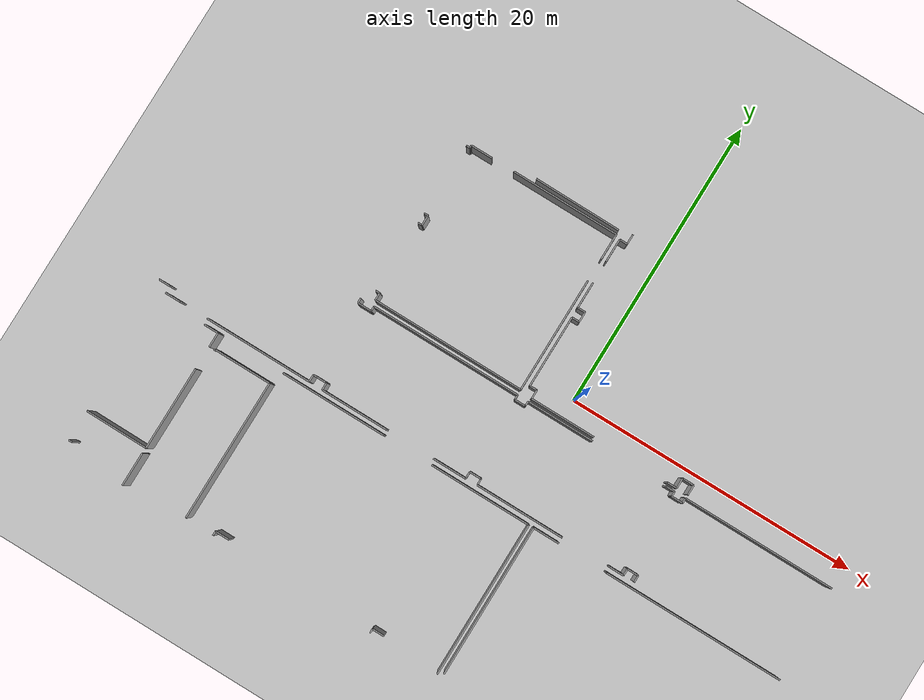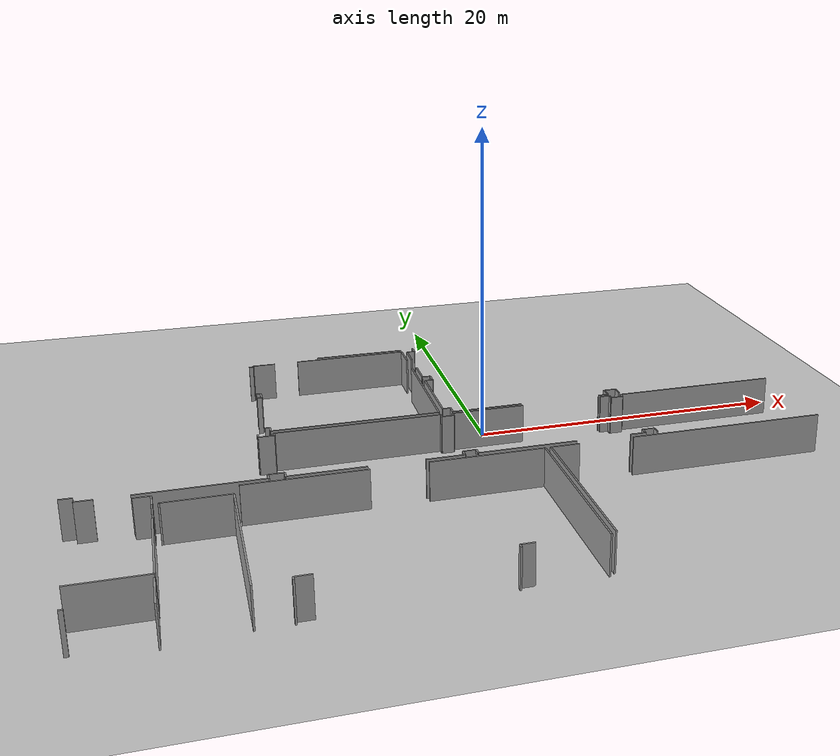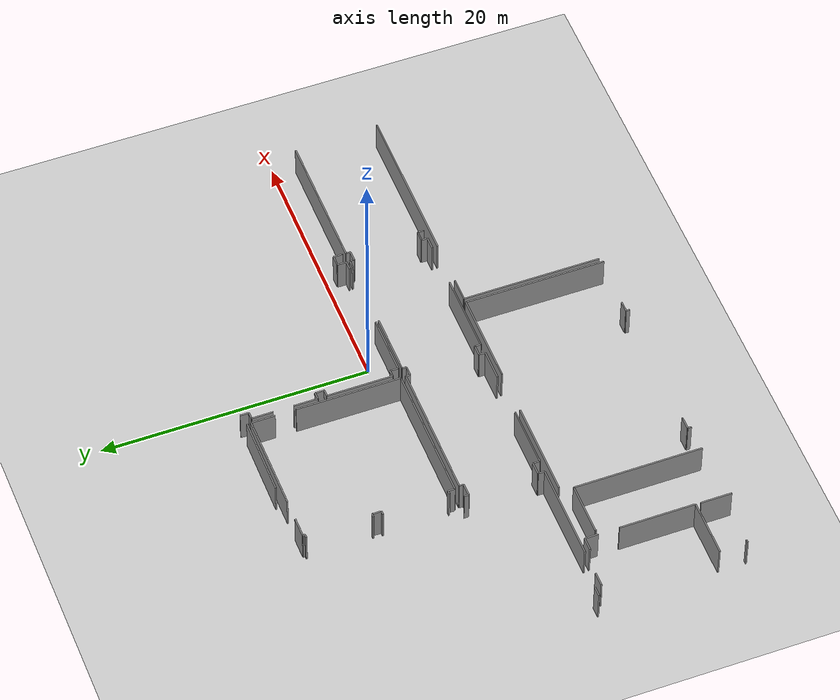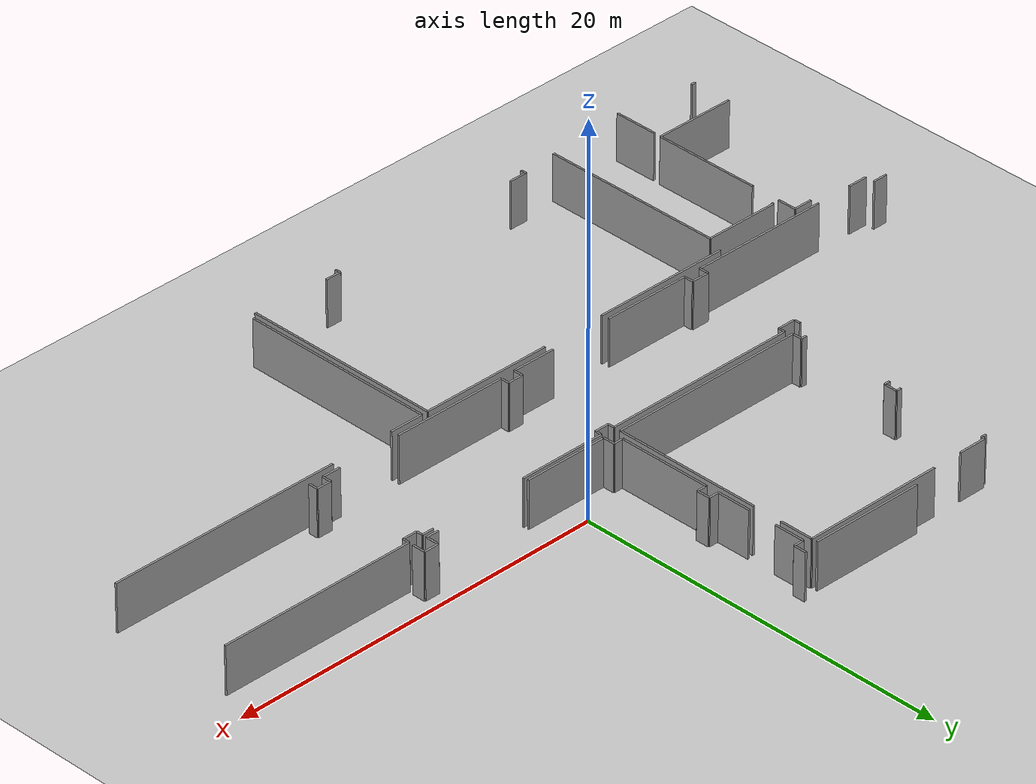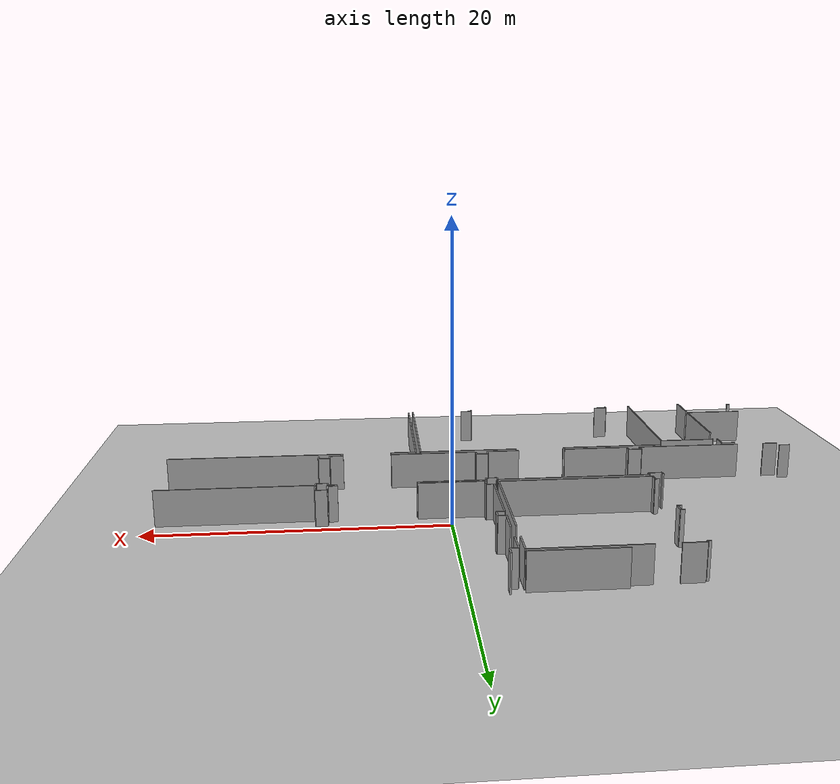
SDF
<sdf version="1.6">
 <world name="default">
  <model name="ground_plane">
   <static>1</static>
   <link name="link">
    <collision name="collision">
     <geometry><plane><normal>0 0 1</normal><size>100 100</size></plane></geometry>
     <surface><friction><ode><mu>100</mu><mu2>50</mu2></ode></friction></surface>
    </collision>
    <visual name="visual">
     <cast_shadows>0</cast_shadows>
     <geometry><plane><normal>0 0 1</normal><size>100 100</size></plane></geometry>
     <material>
      <script><uri>file://media/materials/scripts/gazebo.material</uri><name>Gazebo/Grey</name></script>
     </material>
    </visual>
   </link>
  </model>
  <model name="50015847">
   <static>1</static>
   <link name="Wall_324">
    <collision name="Wall_324_Collision">
     <geometry><box><size>4.93593328927 0.1 2.5</size></box></geometry>
     <pose>2.46796664463 0 1.25 0 0 0</pose>
    </collision>
    <visual name="Wall_324_Visual">
     <pose>2.46796664463 0 1.25 0 0 0</pose>
     <geometry><box><size>4.93593328927 0.1 2.5</size></box></geometry>
     <material>
      <script><uri>file://media/materials/scripts/gazebo.material</uri><name>Gazebo/Grey</name></script>
      <ambient>1 1 1 1</ambient>
     </material>
    </visual>
    <pose>129.529668989 -44.7022931815 0 0 0 1.57079632679</pose>
   </link>
   <link name="Wall_325">
    <collision name="Wall_325_Collision">
     <geometry><box><size>0.518889510347 0.1 2.5</size></box></geometry>
     <pose>0.259444755174 0 1.25 0 0 0</pose>
    </collision>
    <visual name="Wall_325_Visual">
     <pose>0.259444755174 0 1.25 0 0 0</pose>
     <geometry><box><size>0.518889510347 0.1 2.5</size></box></geometry>
     <material>
      <script><uri>file://media/materials/scripts/gazebo.material</uri><name>Gazebo/Grey</name></script>
      <ambient>1 1 1 1</ambient>
     </material>
    </visual>
    <pose>129.529668989 -39.7663598922 0 0 0 0.0</pose>
   </link>
   <link name="Wall_326">
    <collision name="Wall_326_Collision">
     <geometry><box><size>0.692530635074 0.1 2.5</size></box></geometry>
     <pose>0.346265317537 0 1.25 0 0 0</pose>
    </collision>
    <visual name="Wall_326_Visual">
     <pose>0.346265317537 0 1.25 0 0 0</pose>
     <geometry><box><size>0.692530635074 0.1 2.5</size></box></geometry>
     <material>
      <script><uri>file://media/materials/scripts/gazebo.material</uri><name>Gazebo/Grey</name></script>
      <ambient>1 1 1 1</ambient>
     </material>
    </visual>
    <pose>130.048558499 -39.7663598922 0 0 0 1.57079632679</pose>
   </link>
   <link name="Wall_327">
    <collision name="Wall_327_Collision">
     <geometry><box><size>0.535414653989 0.1 2.5</size></box></geometry>
     <pose>0.267707326994 0 1.25 0 0 0</pose>
    </collision>
    <visual name="Wall_327_Visual">
     <pose>0.267707326994 0 1.25 0 0 0</pose>
     <geometry><box><size>0.535414653989 0.1 2.5</size></box></geometry>
     <material>
      <script><uri>file://media/materials/scripts/gazebo.material</uri><name>Gazebo/Grey</name></script>
      <ambient>1 1 1 1</ambient>
     </material>
    </visual>
    <pose>130.048558499 -39.0738292571 0 0 0 3.14159265359</pose>
   </link>
   <link name="Wall_328">
    <collision name="Wall_328_Collision">
     <geometry><box><size>1.79590176438 0.1 2.5</size></box></geometry>
     <pose>0.897950882188 0 1.25 0 0 0</pose>
    </collision>
    <visual name="Wall_328_Visual">
     <pose>0.897950882188 0 1.25 0 0 0</pose>
     <geometry><box><size>1.79590176438 0.1 2.5</size></box></geometry>
     <material>
      <script><uri>file://media/materials/scripts/gazebo.material</uri><name>Gazebo/Grey</name></script>
      <ambient>1 1 1 1</ambient>
     </material>
    </visual>
    <pose>129.513143845 -39.0738292571 0 0 0 1.57079632679</pose>
   </link>
   <link name="Wall_329">
    <collision name="Wall_329_Collision">
     <geometry><box><size>1.60548126303 0.1 2.5</size></box></geometry>
     <pose>0.802740631515 0 1.25 0 0 0</pose>
    </collision>
    <visual name="Wall_329_Visual">
     <pose>0.802740631515 0 1.25 0 0 0</pose>
     <geometry><box><size>1.60548126303 0.1 2.5</size></box></geometry>
     <material>
      <script><uri>file://media/materials/scripts/gazebo.material</uri><name>Gazebo/Grey</name></script>
      <ambient>1 1 1 1</ambient>
     </material>
    </visual>
    <pose>129.513143845 -35.753800783 0 0 0 1.57079632679</pose>
   </link>
   <link name="Wall_330">
    <collision name="Wall_330_Collision">
     <geometry><box><size>0.535414653989 0.1 2.5</size></box></geometry>
     <pose>0.267707326994 0 1.25 0 0 0</pose>
    </collision>
    <visual name="Wall_330_Visual">
     <pose>0.267707326994 0 1.25 0 0 0</pose>
     <geometry><box><size>0.535414653989 0.1 2.5</size></box></geometry>
     <material>
      <script><uri>file://media/materials/scripts/gazebo.material</uri><name>Gazebo/Grey</name></script>
      <ambient>1 1 1 1</ambient>
     </material>
    </visual>
    <pose>129.513143845 -34.14831952 0 0 0 0.0</pose>
   </link>
   <link name="Wall_331">
    <collision name="Wall_331_Collision">
     <geometry><box><size>0.672191996746 0.1 2.5</size></box></geometry>
     <pose>0.336095998373 0 1.25 0 0 0</pose>
    </collision>
    <visual name="Wall_331_Visual">
     <pose>0.336095998373 0 1.25 0 0 0</pose>
     <geometry><box><size>0.672191996746 0.1 2.5</size></box></geometry>
     <material>
      <script><uri>file://media/materials/scripts/gazebo.material</uri><name>Gazebo/Grey</name></script>
      <ambient>1 1 1 1</ambient>
     </material>
    </visual>
    <pose>130.048558499 -34.14831952 0 0 0 1.57079632679</pose>
   </link>
   <link name="Wall_407">
    <collision name="Wall_407_Collision">
     <geometry><box><size>0.69659836274 0.1 2.5</size></box></geometry>
     <pose>0.34829918137 0 1.25 0 0 0</pose>
    </collision>
    <visual name="Wall_407_Visual">
     <pose>0.34829918137 0 1.25 0 0 0</pose>
     <geometry><box><size>0.69659836274 0.1 2.5</size></box></geometry>
     <material>
      <script><uri>file://media/materials/scripts/gazebo.material</uri><name>Gazebo/Grey</name></script>
      <ambient>1 1 1 1</ambient>
     </material>
    </visual>
    <pose>141.210911679 -45.3030457111 0 0 0 1.57079632679</pose>
   </link>
   <link name="Wall_408">
    <collision name="Wall_408_Collision">
     <geometry><box><size>0.788884934154 0.1 2.5</size></box></geometry>
     <pose>0.394442467077 0 1.25 0 0 0</pose>
    </collision>
    <visual name="Wall_408_Visual">
     <pose>0.394442467077 0 1.25 0 0 0</pose>
     <geometry><box><size>0.788884934154 0.1 2.5</size></box></geometry>
     <material>
      <script><uri>file://media/materials/scripts/gazebo.material</uri><name>Gazebo/Grey</name></script>
      <ambient>1 1 1 1</ambient>
     </material>
    </visual>
    <pose>141.210911679 -44.6064473484 0 0 0 3.14159265359</pose>
   </link>
   <link name="Wall_409">
    <collision name="Wall_409_Collision">
     <geometry><box><size>0.698632226572 0.1 2.5</size></box></geometry>
     <pose>0.349316113286 0 1.25 0 0 0</pose>
    </collision>
    <visual name="Wall_409_Visual">
     <pose>0.349316113286 0 1.25 0 0 0</pose>
     <geometry><box><size>0.698632226572 0.1 2.5</size></box></geometry>
     <material>
      <script><uri>file://media/materials/scripts/gazebo.material</uri><name>Gazebo/Grey</name></script>
      <ambient>1 1 1 1</ambient>
     </material>
    </visual>
    <pose>140.422026745 -44.6064473484 0 0 0 -1.57079632679</pose>
   </link>
   <link name="Wall_410">
    <collision name="Wall_410_Collision">
     <geometry><box><size>0.660497279707 0.1 2.5</size></box></geometry>
     <pose>0.330248639854 0 1.25 0 0 0</pose>
    </collision>
    <visual name="Wall_410_Visual">
     <pose>0.330248639854 0 1.25 0 0 0</pose>
     <geometry><box><size>0.660497279707 0.1 2.5</size></box></geometry>
     <material>
      <script><uri>file://media/materials/scripts/gazebo.material</uri><name>Gazebo/Grey</name></script>
      <ambient>1 1 1 1</ambient>
     </material>
    </visual>
    <pose>140.422026745 -45.3050795749 0 0 0 3.14159265359</pose>
   </link>
   <link name="Wall_411">
    <collision name="Wall_411_Collision">
     <geometry><box><size>4.47551736411 0.1 2.5</size></box></geometry>
     <pose>2.23775868206 0 1.25 0 0 0</pose>
    </collision>
    <visual name="Wall_411_Visual">
     <pose>2.23775868206 0 1.25 0 0 0</pose>
     <geometry><box><size>4.47551736411 0.1 2.5</size></box></geometry>
     <material>
      <script><uri>file://media/materials/scripts/gazebo.material</uri><name>Gazebo/Grey</name></script>
      <ambient>1 1 1 1</ambient>
     </material>
    </visual>
    <pose>134.516194641 -45.3050795749 0 0 0 3.14159265359</pose>
   </link>
   <link name="Wall_412">
    <collision name="Wall_412_Collision">
     <geometry><box><size>0.621091167946 0.1 2.5</size></box></geometry>
     <pose>0.310545583973 0 1.25 0 0 0</pose>
    </collision>
    <visual name="Wall_412_Visual">
     <pose>0.310545583973 0 1.25 0 0 0</pose>
     <geometry><box><size>0.621091167946 0.1 2.5</size></box></geometry>
     <material>
      <script><uri>file://media/materials/scripts/gazebo.material</uri><name>Gazebo/Grey</name></script>
      <ambient>1 1 1 1</ambient>
     </material>
    </visual>
    <pose>130.040677277 -45.3050795749 0 0 0 1.57079632679</pose>
   </link>
   <link name="Wall_413">
    <collision name="Wall_413_Collision">
     <geometry><box><size>0.511336029602 0.1 2.5</size></box></geometry>
     <pose>0.255668014801 0 1.25 0 0 0</pose>
    </collision>
    <visual name="Wall_413_Visual">
     <pose>0.255668014801 0 1.25 0 0 0</pose>
     <geometry><box><size>0.511336029602 0.1 2.5</size></box></geometry>
     <material>
      <script><uri>file://media/materials/scripts/gazebo.material</uri><name>Gazebo/Grey</name></script>
      <ambient>1 1 1 1</ambient>
     </material>
    </visual>
    <pose>130.040677277 -44.683988407 0 0 0 -3.10578706732</pose>
   </link>
   <link name="Wall_453">
    <collision name="Wall_453_Collision">
     <geometry><box><size>1.48929679158 0.1 2.5</size></box></geometry>
     <pose>0.74464839579 0 1.25 0 0 0</pose>
    </collision>
    <visual name="Wall_453_Visual">
     <pose>0.74464839579 0 1.25 0 0 0</pose>
     <geometry><box><size>1.48929679158 0.1 2.5</size></box></geometry>
     <material>
      <script><uri>file://media/materials/scripts/gazebo.material</uri><name>Gazebo/Grey</name></script>
      <ambient>1 1 1 1</ambient>
     </material>
    </visual>
    <pose>118.718157319 -33.9851019474 0 0 0 0.0</pose>
   </link>
   <link name="Wall_454">
    <collision name="Wall_454_Collision">
     <geometry><box><size>7.38801037271 0.1 2.5</size></box></geometry>
     <pose>3.69400518635 0 1.25 0 0 0</pose>
    </collision>
    <visual name="Wall_454_Visual">
     <pose>3.69400518635 0 1.25 0 0 0</pose>
     <geometry><box><size>7.38801037271 0.1 2.5</size></box></geometry>
     <material>
      <script><uri>file://media/materials/scripts/gazebo.material</uri><name>Gazebo/Grey</name></script>
      <ambient>1 1 1 1</ambient>
     </material>
    </visual>
    <pose>121.78700361 -33.9851019474 0 0 0 0.0</pose>
   </link>
   <link name="Wall_455">
    <collision name="Wall_455_Collision">
     <geometry><box><size>1.79081710479 0.1 2.5</size></box></geometry>
     <pose>0.895408552397 0 1.25 0 0 0</pose>
    </collision>
    <visual name="Wall_455_Visual">
     <pose>0.895408552397 0 1.25 0 0 0</pose>
     <geometry><box><size>1.79081710479 0.1 2.5</size></box></geometry>
     <material>
      <script><uri>file://media/materials/scripts/gazebo.material</uri><name>Gazebo/Grey</name></script>
      <ambient>1 1 1 1</ambient>
     </material>
    </visual>
    <pose>129.175013983 -33.9851019474 0 0 0 -1.57079632679</pose>
   </link>
   <link name="Wall_456">
    <collision name="Wall_456_Collision">
     <geometry><box><size>7.85681598617 0.1 2.5</size></box></geometry>
     <pose>3.92840799308 0 1.25 0 0 0</pose>
    </collision>
    <visual name="Wall_456_Visual">
     <pose>3.92840799308 0 1.25 0 0 0</pose>
     <geometry><box><size>7.85681598617 0.1 2.5</size></box></geometry>
     <material>
      <script><uri>file://media/materials/scripts/gazebo.material</uri><name>Gazebo/Grey</name></script>
      <ambient>1 1 1 1</ambient>
     </material>
    </visual>
    <pose>129.175013983 -37.3280113896 0 0 0 -1.57079632679</pose>
   </link>
   <link name="Wall_457">
    <collision name="Wall_457_Collision">
     <geometry><box><size>10.4443992475 0.1 2.5</size></box></geometry>
     <pose>5.22219962374 0 1.25 0 0 0</pose>
    </collision>
    <visual name="Wall_457_Visual">
     <pose>5.22219962374 0 1.25 0 0 0</pose>
     <geometry><box><size>10.4443992475 0.1 2.5</size></box></geometry>
     <material>
      <script><uri>file://media/materials/scripts/gazebo.material</uri><name>Gazebo/Grey</name></script>
      <ambient>1 1 1 1</ambient>
     </material>
    </visual>
    <pose>129.175013983 -45.1848273758 0 0 0 3.14159265359</pose>
   </link>
   <link name="Wall_458">
    <collision name="Wall_458_Collision">
     <geometry><box><size>0.507957492246 0.1 2.5</size></box></geometry>
     <pose>0.253978746123 0 1.25 0 0 0</pose>
    </collision>
    <visual name="Wall_458_Visual">
     <pose>0.253978746123 0 1.25 0 0 0</pose>
     <geometry><box><size>0.507957492246 0.1 2.5</size></box></geometry>
     <material>
      <script><uri>file://media/materials/scripts/gazebo.material</uri><name>Gazebo/Grey</name></script>
      <ambient>1 1 1 1</ambient>
     </material>
    </visual>
    <pose>118.730614735 -45.1848273758 0 0 0 1.57079632679</pose>
   </link>
   <link name="Wall_459">
    <collision name="Wall_459_Collision">
     <geometry><box><size>0.289062897239 0.1 2.5</size></box></geometry>
     <pose>0.14453144862 0 1.25 0 0 0</pose>
    </collision>
    <visual name="Wall_459_Visual">
     <pose>0.14453144862 0 1.25 0 0 0</pose>
     <geometry><box><size>0.289062897239 0.1 2.5</size></box></geometry>
     <material>
      <script><uri>file://media/materials/scripts/gazebo.material</uri><name>Gazebo/Grey</name></script>
      <ambient>1 1 1 1</ambient>
     </material>
    </visual>
    <pose>118.730614735 -44.6768698836 0 0 0 3.14159265359</pose>
   </link>
   <link name="Wall_460">
    <collision name="Wall_460_Collision">
     <geometry><box><size>0.295418721717 0.1 2.5</size></box></geometry>
     <pose>0.147709360858 0 1.25 0 0 0</pose>
    </collision>
    <visual name="Wall_460_Visual">
     <pose>0.147709360858 0 1.25 0 0 0</pose>
     <geometry><box><size>0.295418721717 0.1 2.5</size></box></geometry>
     <material>
      <script><uri>file://media/materials/scripts/gazebo.material</uri><name>Gazebo/Grey</name></script>
      <ambient>1 1 1 1</ambient>
     </material>
    </visual>
    <pose>118.441551838 -39.7666141252 0 0 0 0.0</pose>
   </link>
   <link name="Wall_461">
    <collision name="Wall_461_Collision">
     <geometry><box><size>0.697615294656 0.1 2.5</size></box></geometry>
     <pose>0.348807647328 0 1.25 0 0 0</pose>
    </collision>
    <visual name="Wall_461_Visual">
     <pose>0.348807647328 0 1.25 0 0 0</pose>
     <geometry><box><size>0.697615294656 0.1 2.5</size></box></geometry>
     <material>
      <script><uri>file://media/materials/scripts/gazebo.material</uri><name>Gazebo/Grey</name></script>
      <ambient>1 1 1 1</ambient>
     </material>
    </visual>
    <pose>118.73697056 -39.7666141252 0 0 0 1.57079632679</pose>
   </link>
   <link name="Wall_462">
    <collision name="Wall_462_Collision">
     <geometry><box><size>0.276605481263 0.1 2.5</size></box></geometry>
     <pose>0.138302740632 0 1.25 0 0 0</pose>
    </collision>
    <visual name="Wall_462_Visual">
     <pose>0.138302740632 0 1.25 0 0 0</pose>
     <geometry><box><size>0.276605481263 0.1 2.5</size></box></geometry>
     <material>
      <script><uri>file://media/materials/scripts/gazebo.material</uri><name>Gazebo/Grey</name></script>
      <ambient>1 1 1 1</ambient>
     </material>
    </visual>
    <pose>118.73697056 -39.0689988305 0 0 0 3.14159265359</pose>
   </link>
   <link name="Wall_463">
    <collision name="Wall_463_Collision">
     <geometry><box><size>0.263639599329 0.1 2.5</size></box></geometry>
     <pose>0.131819799664 0 1.25 0 0 0</pose>
    </collision>
    <visual name="Wall_463_Visual">
     <pose>0.131819799664 0 1.25 0 0 0</pose>
     <geometry><box><size>0.263639599329 0.1 2.5</size></box></geometry>
     <material>
      <script><uri>file://media/materials/scripts/gazebo.material</uri><name>Gazebo/Grey</name></script>
      <ambient>1 1 1 1</ambient>
     </material>
    </visual>
    <pose>118.460365079 -34.1556922764 0 0 0 0.0</pose>
   </link>
   <link name="Wall_464">
    <collision name="Wall_464_Collision">
     <geometry><box><size>0.170690515092 0.1 2.5</size></box></geometry>
     <pose>0.0853452575459 0 1.25 0 0 0</pose>
    </collision>
    <visual name="Wall_464_Visual">
     <pose>0.0853452575459 0 1.25 0 0 0</pose>
     <geometry><box><size>0.170690515092 0.1 2.5</size></box></geometry>
     <material>
      <script><uri>file://media/materials/scripts/gazebo.material</uri><name>Gazebo/Grey</name></script>
      <ambient>1 1 1 1</ambient>
     </material>
    </visual>
    <pose>118.724004678 -34.1556922764 0 0 0 1.60506011007</pose>
   </link>
   <link name="Wall_469">
    <collision name="Wall_469_Collision">
     <geometry><box><size>5.95661216864 0.1 2.5</size></box></geometry>
     <pose>2.97830608432 0 1.25 0 0 0</pose>
    </collision>
    <visual name="Wall_469_Visual">
     <pose>2.97830608432 0 1.25 0 0 0</pose>
     <geometry><box><size>5.95661216864 0.1 2.5</size></box></geometry>
     <material>
      <script><uri>file://media/materials/scripts/gazebo.material</uri><name>Gazebo/Grey</name></script>
      <ambient>1 1 1 1</ambient>
     </material>
    </visual>
    <pose>129.164081965 -33.6919713225 0 0 0 3.1336539412</pose>
   </link>
   <link name="Wall_1002">
    <collision name="Wall_1002_Collision">
     <geometry><box><size>10.3793156048 0.1 2.5</size></box></geometry>
     <pose>5.18965780241 0 1.25 0 0 0</pose>
    </collision>
    <visual name="Wall_1002_Visual">
     <pose>5.18965780241 0 1.25 0 0 0</pose>
     <geometry><box><size>10.3793156048 0.1 2.5</size></box></geometry>
     <material>
      <script><uri>file://media/materials/scripts/gazebo.material</uri><name>Gazebo/Grey</name></script>
      <ambient>1 1 1 1</ambient>
     </material>
    </visual>
    <pose>134.277469873 -62.311486246 0 0 0 1.57079632679</pose>
   </link>
   <link name="Wall_1003">
    <collision name="Wall_1003_Collision">
     <geometry><box><size>1.79666446331 0.1 2.5</size></box></geometry>
     <pose>0.898332231657 0 1.25 0 0 0</pose>
    </collision>
    <visual name="Wall_1003_Visual">
     <pose>0.898332231657 0 1.25 0 0 0</pose>
     <geometry><box><size>1.79666446331 0.1 2.5</size></box></geometry>
     <material>
      <script><uri>file://media/materials/scripts/gazebo.material</uri><name>Gazebo/Grey</name></script>
      <ambient>1 1 1 1</ambient>
     </material>
    </visual>
    <pose>134.277469873 -51.9321706412 0 0 0 0.0</pose>
   </link>
   <link name="Wall_1004">
    <collision name="Wall_1004_Collision">
     <geometry><box><size>12.3427569024 0.1 2.5</size></box></geometry>
     <pose>6.17137845121 0 1.25 0 0 0</pose>
    </collision>
    <visual name="Wall_1004_Visual">
     <pose>6.17137845121 0 1.25 0 0 0</pose>
     <geometry><box><size>12.3427569024 0.1 2.5</size></box></geometry>
     <material>
      <script><uri>file://media/materials/scripts/gazebo.material</uri><name>Gazebo/Grey</name></script>
      <ambient>1 1 1 1</ambient>
     </material>
    </visual>
    <pose>139.476788529 -51.9321706412 0 0 0 0.0</pose>
   </link>
   <link name="Wall_1013">
    <collision name="Wall_1013_Collision">
     <geometry><box><size>7.27080896934 0.1 2.5</size></box></geometry>
     <pose>3.63540448467 0 1.25 0 0 0</pose>
    </collision>
    <visual name="Wall_1013_Visual">
     <pose>3.63540448467 0 1.25 0 0 0</pose>
     <geometry><box><size>7.27080896934 0.1 2.5</size></box></geometry>
     <material>
      <script><uri>file://media/materials/scripts/gazebo.material</uri><name>Gazebo/Grey</name></script>
      <ambient>1 1 1 1</ambient>
     </material>
    </visual>
    <pose>116.273452992 -51.9413230284 0 0 0 0.0</pose>
   </link>
   <link name="Wall_1014">
    <collision name="Wall_1014_Collision">
     <geometry><box><size>6.97386484975 0.1 2.5</size></box></geometry>
     <pose>3.48693242487 0 1.25 0 0 0</pose>
    </collision>
    <visual name="Wall_1014_Visual">
     <pose>3.48693242487 0 1.25 0 0 0</pose>
     <geometry><box><size>6.97386484975 0.1 2.5</size></box></geometry>
     <material>
      <script><uri>file://media/materials/scripts/gazebo.material</uri><name>Gazebo/Grey</name></script>
      <ambient>1 1 1 1</ambient>
     </material>
    </visual>
    <pose>126.960644735 -51.9413230284 0 0 0 0.0</pose>
   </link>
   <link name="Wall_1015">
    <collision name="Wall_1015_Collision">
     <geometry><box><size>10.6045660243 0.1 2.5</size></box></geometry>
     <pose>5.30228301215 0 1.25 0 0 0</pose>
    </collision>
    <visual name="Wall_1015_Visual">
     <pose>5.30228301215 0 1.25 0 0 0</pose>
     <geometry><box><size>10.6045660243 0.1 2.5</size></box></geometry>
     <material>
      <script><uri>file://media/materials/scripts/gazebo.material</uri><name>Gazebo/Grey</name></script>
      <ambient>1 1 1 1</ambient>
     </material>
    </visual>
    <pose>133.934509585 -51.9413230284 0 0 0 -1.57079632679</pose>
   </link>
   <link name="Wall_1018">
    <collision name="Wall_1018_Collision">
     <geometry><box><size>0.831087608685 0.1 2.5</size></box></geometry>
     <pose>0.415543804342 0 1.25 0 0 0</pose>
    </collision>
    <visual name="Wall_1018_Visual">
     <pose>0.415543804342 0 1.25 0 0 0</pose>
     <geometry><box><size>0.831087608685 0.1 2.5</size></box></geometry>
     <material>
      <script><uri>file://media/materials/scripts/gazebo.material</uri><name>Gazebo/Grey</name></script>
      <ambient>1 1 1 1</ambient>
     </material>
    </visual>
    <pose>129.986779885 -62.2883510449 0 0 0 3.14159265359</pose>
   </link>
   <link name="Wall_1019">
    <collision name="Wall_1019_Collision">
     <geometry><box><size>0.274317384451 0.1 2.5</size></box></geometry>
     <pose>0.137158692226 0 1.25 0 0 0</pose>
    </collision>
    <visual name="Wall_1019_Visual">
     <pose>0.137158692226 0 1.25 0 0 0</pose>
     <geometry><box><size>0.274317384451 0.1 2.5</size></box></geometry>
     <material>
      <script><uri>file://media/materials/scripts/gazebo.material</uri><name>Gazebo/Grey</name></script>
      <ambient>1 1 1 1</ambient>
     </material>
    </visual>
    <pose>129.155692276 -62.2883510449 0 0 0 -1.57079632679</pose>
   </link>
   <link name="Wall_1022">
    <collision name="Wall_1022_Collision">
     <geometry><box><size>0.961763359943 0.1 2.5</size></box></geometry>
     <pose>0.480881679972 0 1.25 0 0 0</pose>
    </collision>
    <visual name="Wall_1022_Visual">
     <pose>0.480881679972 0 1.25 0 0 0</pose>
     <geometry><box><size>0.961763359943 0.1 2.5</size></box></geometry>
     <material>
      <script><uri>file://media/materials/scripts/gazebo.material</uri><name>Gazebo/Grey</name></script>
      <ambient>1 1 1 1</ambient>
     </material>
    </visual>
    <pose>118.868917476 -62.2789444247 0 0 0 3.14159265359</pose>
   </link>
   <link name="Wall_1023">
    <collision name="Wall_1023_Collision">
     <geometry><box><size>0.284232470636 0.1 2.5</size></box></geometry>
     <pose>0.142116235318 0 1.25 0 0 0</pose>
    </collision>
    <visual name="Wall_1023_Visual">
     <pose>0.142116235318 0 1.25 0 0 0</pose>
     <geometry><box><size>0.284232470636 0.1 2.5</size></box></geometry>
     <material>
      <script><uri>file://media/materials/scripts/gazebo.material</uri><name>Gazebo/Grey</name></script>
      <ambient>1 1 1 1</ambient>
     </material>
    </visual>
    <pose>117.907154116 -62.2789444247 0 0 0 -1.57079632679</pose>
   </link>
   <link name="Wall_1027">
    <collision name="Wall_1027_Collision">
     <geometry><box><size>0.990237453603 0.1 2.5</size></box></geometry>
     <pose>0.495118726801 0 1.25 0 0 0</pose>
    </collision>
    <visual name="Wall_1027_Visual">
     <pose>0.495118726801 0 1.25 0 0 0</pose>
     <geometry><box><size>0.990237453603 0.1 2.5</size></box></geometry>
     <material>
      <script><uri>file://media/materials/scripts/gazebo.material</uri><name>Gazebo/Grey</name></script>
      <ambient>1 1 1 1</ambient>
     </material>
    </visual>
    <pose>110.614735343 -51.9453907561 0 0 0 0.0</pose>
   </link>
   <link name="Wall_1028">
    <collision name="Wall_1028_Collision">
     <geometry><box><size>1.0133726547 0.1 2.5</size></box></geometry>
     <pose>0.50668632735 0 1.25 0 0 0</pose>
    </collision>
    <visual name="Wall_1028_Visual">
     <pose>0.50668632735 0 1.25 0 0 0</pose>
     <geometry><box><size>1.0133726547 0.1 2.5</size></box></geometry>
     <material>
      <script><uri>file://media/materials/scripts/gazebo.material</uri><name>Gazebo/Grey</name></script>
      <ambient>1 1 1 1</ambient>
     </material>
    </visual>
    <pose>111.604972797 -51.9453907561 0 0 0 -1.57079632679</pose>
   </link>
   <link name="Wall_1029">
    <collision name="Wall_1029_Collision">
     <geometry><box><size>5.68515787868 0.1 2.5</size></box></geometry>
     <pose>2.84257893934 0 1.25 0 0 0</pose>
    </collision>
    <visual name="Wall_1029_Visual">
     <pose>2.84257893934 0 1.25 0 0 0</pose>
     <geometry><box><size>5.68515787868 0.1 2.5</size></box></geometry>
     <material>
      <script><uri>file://media/materials/scripts/gazebo.material</uri><name>Gazebo/Grey</name></script>
      <ambient>1 1 1 1</ambient>
     </material>
    </visual>
    <pose>111.604972797 -54.5220419993 0 0 0 -1.57079632679</pose>
   </link>
   <link name="Wall_1030">
    <collision name="Wall_1030_Collision">
     <geometry><box><size>4.28615734537 0.1 2.5</size></box></geometry>
     <pose>2.14307867269 0 1.25 0 0 0</pose>
    </collision>
    <visual name="Wall_1030_Visual">
     <pose>2.14307867269 0 1.25 0 0 0</pose>
     <geometry><box><size>4.28615734537 0.1 2.5</size></box></geometry>
     <material>
      <script><uri>file://media/materials/scripts/gazebo.material</uri><name>Gazebo/Grey</name></script>
      <ambient>1 1 1 1</ambient>
     </material>
    </visual>
    <pose>111.604972797 -60.207199878 0 0 0 3.13708470619</pose>
   </link>
   <link name="Wall_1032">
    <collision name="Wall_1032_Collision">
     <geometry><box><size>0.0826257182082 0.1 2.5</size></box></geometry>
     <pose>0.0413128591041 0 1.25 0 0 0</pose>
    </collision>
    <visual name="Wall_1032_Visual">
     <pose>0.0413128591041 0 1.25 0 0 0</pose>
     <geometry><box><size>0.0826257182082 0.1 2.5</size></box></geometry>
     <material>
      <script><uri>file://media/materials/scripts/gazebo.material</uri><name>Gazebo/Grey</name></script>
      <ambient>1 1 1 1</ambient>
     </material>
    </visual>
    <pose>111.981237606 -52.980627447 0 0 0 1.57079632679</pose>
   </link>
   <link name="Wall_1033">
    <collision name="Wall_1033_Collision">
     <geometry><box><size>3.94340773885 0.1 2.5</size></box></geometry>
     <pose>1.97170386943 0 1.25 0 0 0</pose>
    </collision>
    <visual name="Wall_1033_Visual">
     <pose>1.97170386943 0 1.25 0 0 0</pose>
     <geometry><box><size>3.94340773885 0.1 2.5</size></box></geometry>
     <material>
      <script><uri>file://media/materials/scripts/gazebo.material</uri><name>Gazebo/Grey</name></script>
      <ambient>1 1 1 1</ambient>
     </material>
    </visual>
    <pose>111.981237606 -52.8980017288 0 0 0 0.0</pose>
   </link>
   <link name="Wall_1034">
    <collision name="Wall_1034_Collision">
     <geometry><box><size>9.64788732394 0.1 2.5</size></box></geometry>
     <pose>4.82394366197 0 1.25 0 0 0</pose>
    </collision>
    <visual name="Wall_1034_Visual">
     <pose>4.82394366197 0 1.25 0 0 0</pose>
     <geometry><box><size>9.64788732394 0.1 2.5</size></box></geometry>
     <material>
      <script><uri>file://media/materials/scripts/gazebo.material</uri><name>Gazebo/Grey</name></script>
      <ambient>1 1 1 1</ambient>
     </material>
    </visual>
    <pose>115.924645345 -52.8980017288 0 0 0 -1.57079632679</pose>
   </link>
   <link name="Wall_1123">
    <collision name="Wall_1123_Collision">
     <geometry><box><size>0.346773783495 0.1 2.5</size></box></geometry>
     <pose>0.173386891748 0 1.25 0 0 0</pose>
    </collision>
    <visual name="Wall_1123_Visual">
     <pose>0.173386891748 0 1.25 0 0 0</pose>
     <geometry><box><size>0.346773783495 0.1 2.5</size></box></geometry>
     <material>
      <script><uri>file://media/materials/scripts/gazebo.material</uri><name>Gazebo/Grey</name></script>
      <ambient>1 1 1 1</ambient>
     </material>
    </visual>
    <pose>117.910967611 -45.5440585753 0 0 0 -1.57079632679</pose>
   </link>
   <link name="Wall_1124">
    <collision name="Wall_1124_Collision">
     <geometry><box><size>0.955916001424 0.1 2.5</size></box></geometry>
     <pose>0.477958000712 0 1.25 0 0 0</pose>
    </collision>
    <visual name="Wall_1124_Visual">
     <pose>0.477958000712 0 1.25 0 0 0</pose>
     <geometry><box><size>0.955916001424 0.1 2.5</size></box></geometry>
     <material>
      <script><uri>file://media/materials/scripts/gazebo.material</uri><name>Gazebo/Grey</name></script>
      <ambient>1 1 1 1</ambient>
     </material>
    </visual>
    <pose>117.910967611 -45.8908323588 0 0 0 0.0</pose>
   </link>
   <link name="Wall_1125">
    <collision name="Wall_1125_Collision">
     <geometry><box><size>0.332282503686 0.1 2.5</size></box></geometry>
     <pose>0.166141251843 0 1.25 0 0 0</pose>
    </collision>
    <visual name="Wall_1125_Visual">
     <pose>0.166141251843 0 1.25 0 0 0</pose>
     <geometry><box><size>0.332282503686 0.1 2.5</size></box></geometry>
     <material>
      <script><uri>file://media/materials/scripts/gazebo.material</uri><name>Gazebo/Grey</name></script>
      <ambient>1 1 1 1</ambient>
     </material>
    </visual>
    <pose>118.866883612 -45.8908323588 0 0 0 1.57079632679</pose>
   </link>
   <link name="Wall_1126">
    <collision name="Wall_1126_Collision">
     <geometry><box><size>10.3210962526 0.1 2.5</size></box></geometry>
     <pose>5.1605481263 0 1.25 0 0 0</pose>
    </collision>
    <visual name="Wall_1126_Visual">
     <pose>5.1605481263 0 1.25 0 0 0</pose>
     <geometry><box><size>10.3210962526 0.1 2.5</size></box></geometry>
     <material>
      <script><uri>file://media/materials/scripts/gazebo.material</uri><name>Gazebo/Grey</name></script>
      <ambient>1 1 1 1</ambient>
     </material>
    </visual>
    <pose>118.866883612 -45.5585498551 0 0 0 0.0</pose>
   </link>
   <link name="Wall_1127">
    <collision name="Wall_1127_Collision">
     <geometry><box><size>0.332282503686 0.1 2.5</size></box></geometry>
     <pose>0.166141251843 0 1.25 0 0 0</pose>
    </collision>
    <visual name="Wall_1127_Visual">
     <pose>0.166141251843 0 1.25 0 0 0</pose>
     <geometry><box><size>0.332282503686 0.1 2.5</size></box></geometry>
     <material>
      <script><uri>file://media/materials/scripts/gazebo.material</uri><name>Gazebo/Grey</name></script>
      <ambient>1 1 1 1</ambient>
     </material>
    </visual>
    <pose>129.187979865 -45.5585498551 0 0 0 -1.57079632679</pose>
   </link>
   <link name="Wall_1128">
    <collision name="Wall_1128_Collision">
     <geometry><box><size>0.758631209641 0.1 2.5</size></box></geometry>
     <pose>0.37931560482 0 1.25 0 0 0</pose>
    </collision>
    <visual name="Wall_1128_Visual">
     <pose>0.37931560482 0 1.25 0 0 0</pose>
     <geometry><box><size>0.758631209641 0.1 2.5</size></box></geometry>
     <material>
      <script><uri>file://media/materials/scripts/gazebo.material</uri><name>Gazebo/Grey</name></script>
      <ambient>1 1 1 1</ambient>
     </material>
    </visual>
    <pose>129.187979865 -45.8908323588 0 0 0 0.0</pose>
   </link>
   <link name="Wall_1129">
    <collision name="Wall_1129_Collision">
     <geometry><box><size>0.33965526008 0.1 2.5</size></box></geometry>
     <pose>0.16982763004 0 1.25 0 0 0</pose>
    </collision>
    <visual name="Wall_1129_Visual">
     <pose>0.16982763004 0 1.25 0 0 0</pose>
     <geometry><box><size>0.33965526008 0.1 2.5</size></box></geometry>
     <material>
      <script><uri>file://media/materials/scripts/gazebo.material</uri><name>Gazebo/Grey</name></script>
      <ambient>1 1 1 1</ambient>
     </material>
    </visual>
    <pose>129.946611074 -45.8908323588 0 0 0 1.57079632679</pose>
   </link>
   <link name="Wall_1130">
    <collision name="Wall_1130_Collision">
     <geometry><box><size>4.61966746326 0.1 2.5</size></box></geometry>
     <pose>2.30983373163 0 1.25 0 0 0</pose>
    </collision>
    <visual name="Wall_1130_Visual">
     <pose>2.30983373163 0 1.25 0 0 0</pose>
     <geometry><box><size>4.61966746326 0.1 2.5</size></box></geometry>
     <material>
      <script><uri>file://media/materials/scripts/gazebo.material</uri><name>Gazebo/Grey</name></script>
      <ambient>1 1 1 1</ambient>
     </material>
    </visual>
    <pose>129.946611074 -45.5511770987 0 0 0 0.0</pose>
   </link>
   <link name="Wall_1131">
    <collision name="Wall_1131_Collision">
     <geometry><box><size>0.623379264758 0.1 2.5</size></box></geometry>
     <pose>0.311689632379 0 1.25 0 0 0</pose>
    </collision>
    <visual name="Wall_1131_Visual">
     <pose>0.311689632379 0 1.25 0 0 0</pose>
     <geometry><box><size>0.623379264758 0.1 2.5</size></box></geometry>
     <material>
      <script><uri>file://media/materials/scripts/gazebo.material</uri><name>Gazebo/Grey</name></script>
      <ambient>1 1 1 1</ambient>
     </material>
    </visual>
    <pose>139.801952509 -45.5511770987 0 0 0 0.0</pose>
   </link>
   <link name="Wall_1132">
    <collision name="Wall_1132_Collision">
     <geometry><box><size>0.33965526008 0.1 2.5</size></box></geometry>
     <pose>0.16982763004 0 1.25 0 0 0</pose>
    </collision>
    <visual name="Wall_1132_Visual">
     <pose>0.16982763004 0 1.25 0 0 0</pose>
     <geometry><box><size>0.33965526008 0.1 2.5</size></box></geometry>
     <material>
      <script><uri>file://media/materials/scripts/gazebo.material</uri><name>Gazebo/Grey</name></script>
      <ambient>1 1 1 1</ambient>
     </material>
    </visual>
    <pose>140.425331774 -45.5511770987 0 0 0 -1.57079632679</pose>
   </link>
   <link name="Wall_1133">
    <collision name="Wall_1133_Collision">
     <geometry><box><size>0.77286825647 0.1 2.5</size></box></geometry>
     <pose>0.386434128235 0 1.25 0 0 0</pose>
    </collision>
    <visual name="Wall_1133_Visual">
     <pose>0.386434128235 0 1.25 0 0 0</pose>
     <geometry><box><size>0.77286825647 0.1 2.5</size></box></geometry>
     <material>
      <script><uri>file://media/materials/scripts/gazebo.material</uri><name>Gazebo/Grey</name></script>
      <ambient>1 1 1 1</ambient>
     </material>
    </visual>
    <pose>140.425331774 -45.8908323588 0 0 0 0.0</pose>
   </link>
   <link name="Wall_1134">
    <collision name="Wall_1134_Collision">
     <geometry><box><size>0.340672191997 0.1 2.5</size></box></geometry>
     <pose>0.170336095998 0 1.25 0 0 0</pose>
    </collision>
    <visual name="Wall_1134_Visual">
     <pose>0.170336095998 0 1.25 0 0 0</pose>
     <geometry><box><size>0.340672191997 0.1 2.5</size></box></geometry>
     <material>
      <script><uri>file://media/materials/scripts/gazebo.material</uri><name>Gazebo/Grey</name></script>
      <ambient>1 1 1 1</ambient>
     </material>
    </visual>
    <pose>141.198200031 -45.8908323588 0 0 0 1.57079632679</pose>
   </link>
   <link name="Wall_1135">
    <collision name="Wall_1135_Collision">
     <geometry><box><size>10.4357553262 0.1 2.5</size></box></geometry>
     <pose>5.21787766309 0 1.25 0 0 0</pose>
    </collision>
    <visual name="Wall_1135_Visual">
     <pose>5.21787766309 0 1.25 0 0 0</pose>
     <geometry><box><size>10.4357553262 0.1 2.5</size></box></geometry>
     <material>
      <script><uri>file://media/materials/scripts/gazebo.material</uri><name>Gazebo/Grey</name></script>
      <ambient>1 1 1 1</ambient>
     </material>
    </visual>
    <pose>141.198200031 -45.5501601668 0 0 0 0.0</pose>
   </link>
   <link name="Wall_1234">
    <collision name="Wall_1234_Collision">
     <geometry><box><size>0.482025728377 0.1 2.5</size></box></geometry>
     <pose>0.241012864189 0 1.25 0 0 0</pose>
    </collision>
    <visual name="Wall_1234_Visual">
     <pose>0.241012864189 0 1.25 0 0 0</pose>
     <geometry><box><size>0.482025728377 0.1 2.5</size></box></geometry>
     <material>
      <script><uri>file://media/materials/scripts/gazebo.material</uri><name>Gazebo/Grey</name></script>
      <ambient>1 1 1 1</ambient>
     </material>
    </visual>
    <pose>141.198200031 -51.5421772512 0 0 0 1.57079632679</pose>
   </link>
   <link name="Wall_1235">
    <collision name="Wall_1235_Collision">
     <geometry><box><size>0.76447856816 0.1 2.5</size></box></geometry>
     <pose>0.38223928408 0 1.25 0 0 0</pose>
    </collision>
    <visual name="Wall_1235_Visual">
     <pose>0.38223928408 0 1.25 0 0 0</pose>
     <geometry><box><size>0.76447856816 0.1 2.5</size></box></geometry>
     <material>
      <script><uri>file://media/materials/scripts/gazebo.material</uri><name>Gazebo/Grey</name></script>
      <ambient>1 1 1 1</ambient>
     </material>
    </visual>
    <pose>141.198200031 -51.0601515229 0 0 0 3.14159265359</pose>
   </link>
   <link name="Wall_1236">
    <collision name="Wall_1236_Collision">
     <geometry><box><size>0.465500584736 0.1 2.5</size></box></geometry>
     <pose>0.232750292368 0 1.25 0 0 0</pose>
    </collision>
    <visual name="Wall_1236_Visual">
     <pose>0.232750292368 0 1.25 0 0 0</pose>
     <geometry><box><size>0.465500584736 0.1 2.5</size></box></geometry>
     <material>
      <script><uri>file://media/materials/scripts/gazebo.material</uri><name>Gazebo/Grey</name></script>
      <ambient>1 1 1 1</ambient>
     </material>
    </visual>
    <pose>140.433721462 -51.0601515229 0 0 0 -1.57079632679</pose>
   </link>
   <link name="Wall_1237">
    <collision name="Wall_1237_Collision">
     <geometry><box><size>0.97676310571 0.1 2.5</size></box></geometry>
     <pose>0.488381552855 0 1.25 0 0 0</pose>
    </collision>
    <visual name="Wall_1237_Visual">
     <pose>0.488381552855 0 1.25 0 0 0</pose>
     <geometry><box><size>0.97676310571 0.1 2.5</size></box></geometry>
     <material>
      <script><uri>file://media/materials/scripts/gazebo.material</uri><name>Gazebo/Grey</name></script>
      <ambient>1 1 1 1</ambient>
     </material>
    </visual>
    <pose>140.433721462 -51.5256521076 0 0 0 3.14159265359</pose>
   </link>
   <link name="Wall_1238">
    <collision name="Wall_1238_Collision">
     <geometry><box><size>6.07082930798 0.1 2.5</size></box></geometry>
     <pose>3.03541465399 0 1.25 0 0 0</pose>
    </collision>
    <visual name="Wall_1238_Visual">
     <pose>3.03541465399 0 1.25 0 0 0</pose>
     <geometry><box><size>6.07082930798 0.1 2.5</size></box></geometry>
     <material>
      <script><uri>file://media/materials/scripts/gazebo.material</uri><name>Gazebo/Grey</name></script>
      <ambient>1 1 1 1</ambient>
     </material>
    </visual>
    <pose>136.053541465 -51.5256521076 0 0 0 3.14159265359</pose>
   </link>
   <link name="Wall_1239">
    <collision name="Wall_1239_Collision">
     <geometry><box><size>0.449483907052 0.1 2.5</size></box></geometry>
     <pose>0.224741953526 0 1.25 0 0 0</pose>
    </collision>
    <visual name="Wall_1239_Visual">
     <pose>0.224741953526 0 1.25 0 0 0</pose>
     <geometry><box><size>0.449483907052 0.1 2.5</size></box></geometry>
     <material>
      <script><uri>file://media/materials/scripts/gazebo.material</uri><name>Gazebo/Grey</name></script>
      <ambient>1 1 1 1</ambient>
     </material>
    </visual>
    <pose>129.982712157 -51.5256521076 0 0 0 1.57079632679</pose>
   </link>
   <link name="Wall_1240">
    <collision name="Wall_1240_Collision">
     <geometry><box><size>0.813291300147 0.1 2.5</size></box></geometry>
     <pose>0.406645650074 0 1.25 0 0 0</pose>
    </collision>
    <visual name="Wall_1240_Visual">
     <pose>0.406645650074 0 1.25 0 0 0</pose>
     <geometry><box><size>0.813291300147 0.1 2.5</size></box></geometry>
     <material>
      <script><uri>file://media/materials/scripts/gazebo.material</uri><name>Gazebo/Grey</name></script>
      <ambient>1 1 1 1</ambient>
     </material>
    </visual>
    <pose>129.982712157 -51.0761682005 0 0 0 3.14159265359</pose>
   </link>
   <link name="Wall_1241">
    <collision name="Wall_1241_Collision">
     <geometry><box><size>0.483551126252 0.1 2.5</size></box></geometry>
     <pose>0.241775563126 0 1.25 0 0 0</pose>
    </collision>
    <visual name="Wall_1241_Visual">
     <pose>0.241775563126 0 1.25 0 0 0</pose>
     <geometry><box><size>0.483551126252 0.1 2.5</size></box></geometry>
     <material>
      <script><uri>file://media/materials/scripts/gazebo.material</uri><name>Gazebo/Grey</name></script>
      <ambient>1 1 1 1</ambient>
     </material>
    </visual>
    <pose>129.169420857 -51.0761682005 0 0 0 -1.57079632679</pose>
   </link>
   <link name="Wall_1242">
    <collision name="Wall_1242_Collision">
     <geometry><box><size>2.31580820664 0.1 2.5</size></box></geometry>
     <pose>1.15790410332 0 1.25 0 0 0</pose>
    </collision>
    <visual name="Wall_1242_Visual">
     <pose>1.15790410332 0 1.25 0 0 0</pose>
     <geometry><box><size>2.31580820664 0.1 2.5</size></box></geometry>
     <material>
      <script><uri>file://media/materials/scripts/gazebo.material</uri><name>Gazebo/Grey</name></script>
      <ambient>1 1 1 1</ambient>
     </material>
    </visual>
    <pose>129.169420857 -51.5597193268 0 0 0 3.14159265359</pose>
   </link>
   <link name="Wall_1243">
    <collision name="Wall_1243_Collision">
     <geometry><box><size>4.61992169624 0.1 2.5</size></box></geometry>
     <pose>2.30996084812 0 1.25 0 0 0</pose>
    </collision>
    <visual name="Wall_1243_Visual">
     <pose>2.30996084812 0 1.25 0 0 0</pose>
     <geometry><box><size>4.61992169624 0.1 2.5</size></box></geometry>
     <material>
      <script><uri>file://media/materials/scripts/gazebo.material</uri><name>Gazebo/Grey</name></script>
      <ambient>1 1 1 1</ambient>
     </material>
    </visual>
    <pose>123.48782224 -51.5597193268 0 0 0 3.14159265359</pose>
   </link>
   <link name="Wall_1244">
    <collision name="Wall_1244_Collision">
     <geometry><box><size>0.501601667768 0.1 2.5</size></box></geometry>
     <pose>0.250800833884 0 1.25 0 0 0</pose>
    </collision>
    <visual name="Wall_1244_Visual">
     <pose>0.250800833884 0 1.25 0 0 0</pose>
     <geometry><box><size>0.501601667768 0.1 2.5</size></box></geometry>
     <material>
      <script><uri>file://media/materials/scripts/gazebo.material</uri><name>Gazebo/Grey</name></script>
      <ambient>1 1 1 1</ambient>
     </material>
    </visual>
    <pose>118.867900544 -51.5597193268 0 0 0 1.57079632679</pose>
   </link>
   <link name="Wall_1245">
    <collision name="Wall_1245_Collision">
     <geometry><box><size>0.939390857782 0.1 2.5</size></box></geometry>
     <pose>0.469695428891 0 1.25 0 0 0</pose>
    </collision>
    <visual name="Wall_1245_Visual">
     <pose>0.469695428891 0 1.25 0 0 0</pose>
     <geometry><box><size>0.939390857782 0.1 2.5</size></box></geometry>
     <material>
      <script><uri>file://media/materials/scripts/gazebo.material</uri><name>Gazebo/Grey</name></script>
      <ambient>1 1 1 1</ambient>
     </material>
    </visual>
    <pose>118.867900544 -51.058117659 0 0 0 3.14159265359</pose>
   </link>
   <link name="Wall_1246">
    <collision name="Wall_1246_Collision">
     <geometry><box><size>0.48405959221 0.1 2.5</size></box></geometry>
     <pose>0.242029796105 0 1.25 0 0 0</pose>
    </collision>
    <visual name="Wall_1246_Visual">
     <pose>0.242029796105 0 1.25 0 0 0</pose>
     <geometry><box><size>0.48405959221 0.1 2.5</size></box></geometry>
     <material>
      <script><uri>file://media/materials/scripts/gazebo.material</uri><name>Gazebo/Grey</name></script>
      <ambient>1 1 1 1</ambient>
     </material>
    </visual>
    <pose>117.928509686 -51.058117659 0 0 0 -1.57079632679</pose>
   </link>
   <link name="Wall_1247">
    <collision name="Wall_1247_Collision">
     <geometry><box><size>7.37885798546 0.1 2.5</size></box></geometry>
     <pose>3.68942899273 0 1.25 0 0 0</pose>
    </collision>
    <visual name="Wall_1247_Visual">
     <pose>3.68942899273 0 1.25 0 0 0</pose>
     <geometry><box><size>7.37885798546 0.1 2.5</size></box></geometry>
     <material>
      <script><uri>file://media/materials/scripts/gazebo.material</uri><name>Gazebo/Grey</name></script>
      <ambient>1 1 1 1</ambient>
     </material>
    </visual>
    <pose>117.928509686 -51.5421772512 0 0 0 3.14159265359</pose>
   </link>
   <link name="Wall_1248">
    <collision name="Wall_1248_Collision">
     <geometry><box><size>1.04693140794 0.1 2.5</size></box></geometry>
     <pose>0.523465703971 0 1.25 0 0 0</pose>
    </collision>
    <visual name="Wall_1248_Visual">
     <pose>0.523465703971 0 1.25 0 0 0</pose>
     <geometry><box><size>1.04693140794 0.1 2.5</size></box></geometry>
     <material>
      <script><uri>file://media/materials/scripts/gazebo.material</uri><name>Gazebo/Grey</name></script>
      <ambient>1 1 1 1</ambient>
     </material>
    </visual>
    <pose>108.607565973 -51.5421772512 0 0 0 3.14159265359</pose>
   </link>
   <link name="Wall_1250">
    <collision name="Wall_1250_Collision">
     <geometry><box><size>0.780495245843 0.1 2.5</size></box></geometry>
     <pose>0.390247622922 0 1.25 0 0 0</pose>
    </collision>
    <visual name="Wall_1250_Visual">
     <pose>0.390247622922 0 1.25 0 0 0</pose>
     <geometry><box><size>0.780495245843 0.1 2.5</size></box></geometry>
     <material>
      <script><uri>file://media/materials/scripts/gazebo.material</uri><name>Gazebo/Grey</name></script>
      <ambient>1 1 1 1</ambient>
     </material>
    </visual>
    <pose>107.560634566 -51.0543041643 0 0 0 3.14159265359</pose>
   </link>
   <link name="Wall_1654">
    <collision name="Wall_1654_Collision">
     <geometry><box><size>0.238979000356 0.1 2.5</size></box></geometry>
     <pose>0.119489500178 0 1.25 0 0 0</pose>
    </collision>
    <visual name="Wall_1654_Visual">
     <pose>0.119489500178 0 1.25 0 0 0</pose>
     <geometry><box><size>0.238979000356 0.1 2.5</size></box></geometry>
     <material>
      <script><uri>file://media/materials/scripts/gazebo.material</uri><name>Gazebo/Grey</name></script>
      <ambient>1 1 1 1</ambient>
     </material>
    </visual>
    <pose>107.563939594 -62.2733512991 0 0 0 3.14159265359</pose>
   </link>
   <link name="Wall_1657">
    <collision name="Wall_1657_Collision">
     <geometry><box><size>2.31123201302 0.1 2.5</size></box></geometry>
     <pose>1.15561600651 0 1.25 0 0 0</pose>
    </collision>
    <visual name="Wall_1657_Visual">
     <pose>1.15561600651 0 1.25 0 0 0</pose>
     <geometry><box><size>2.31123201302 0.1 2.5</size></box></geometry>
     <material>
      <script><uri>file://media/materials/scripts/gazebo.material</uri><name>Gazebo/Grey</name></script>
      <ambient>1 1 1 1</ambient>
     </material>
    </visual>
    <pose>111.58641379 -60.5928713073 0 0 0 -1.57079632679</pose>
   </link>
   <pose>-132.35 43.9162226064 0 0 0 0</pose>
  </model>
 </world>
</sdf>
